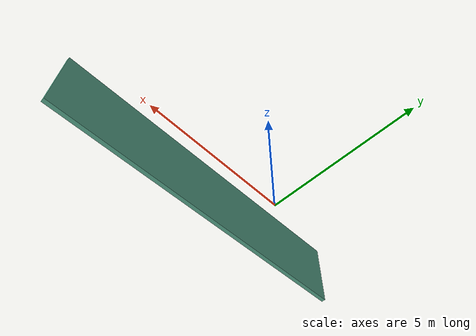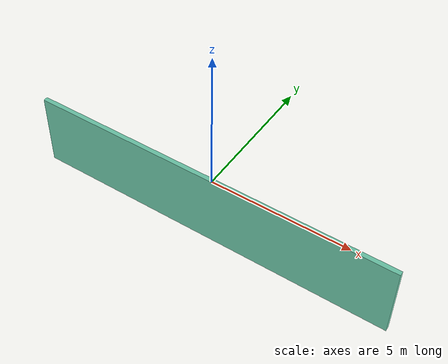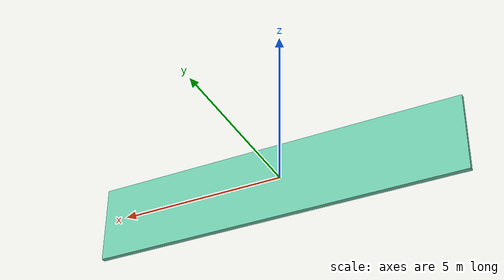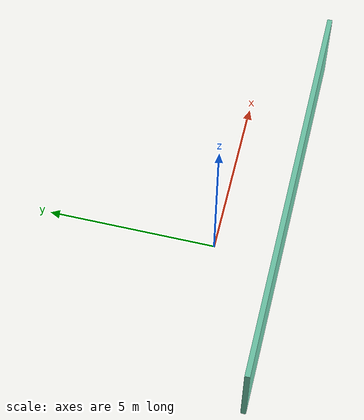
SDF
<?xml version='1.0'?>
<sdf version='1.7'>
  <model name='green_wall'>
    <pose>1.105 -0.9925 0 0 -0 0</pose>
    <link name='Wall_0'>
      <collision name='Wall_0_Collision'>
        <geometry>
          <box>
            <size>12 0.15 2.5</size>
          </box>
        </geometry>
        <pose>0 0 1.25 0 -0 0</pose>
      </collision>
      <visual name='Wall_0_Visual'>
        <pose>0 0 1.25 0 -0 0</pose>
        <geometry>
          <box>
            <size>12 0.15 2.5</size>
          </box>
        </geometry>
        <material>
          <script>
            <uri>file://media/materials/scripts/gazebo.material</uri>
            <name>Gazebo/Grey</name>
          </script>
          <ambient>0.435294 0.796078 0.67451 1</ambient>
        </material>
        <meta>
          <layer>0</layer>
        </meta>
      </visual>
      <pose>0 -0.9175 0 0 -0 0</pose>
    </link>
    <static>1</static>
  </model>
</sdf>
